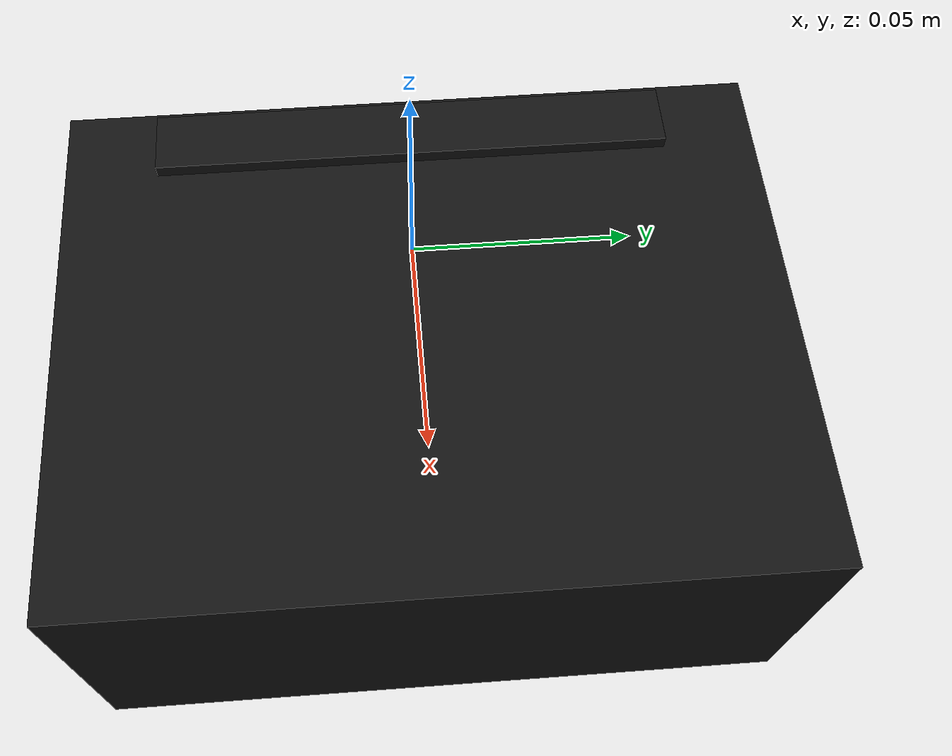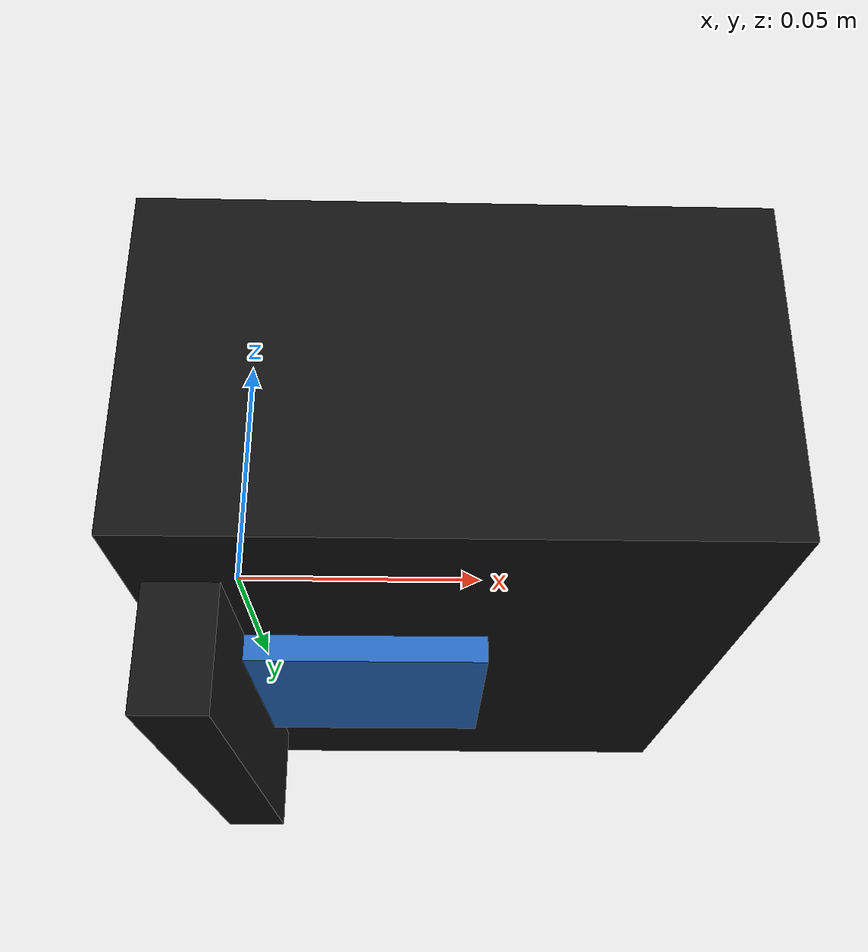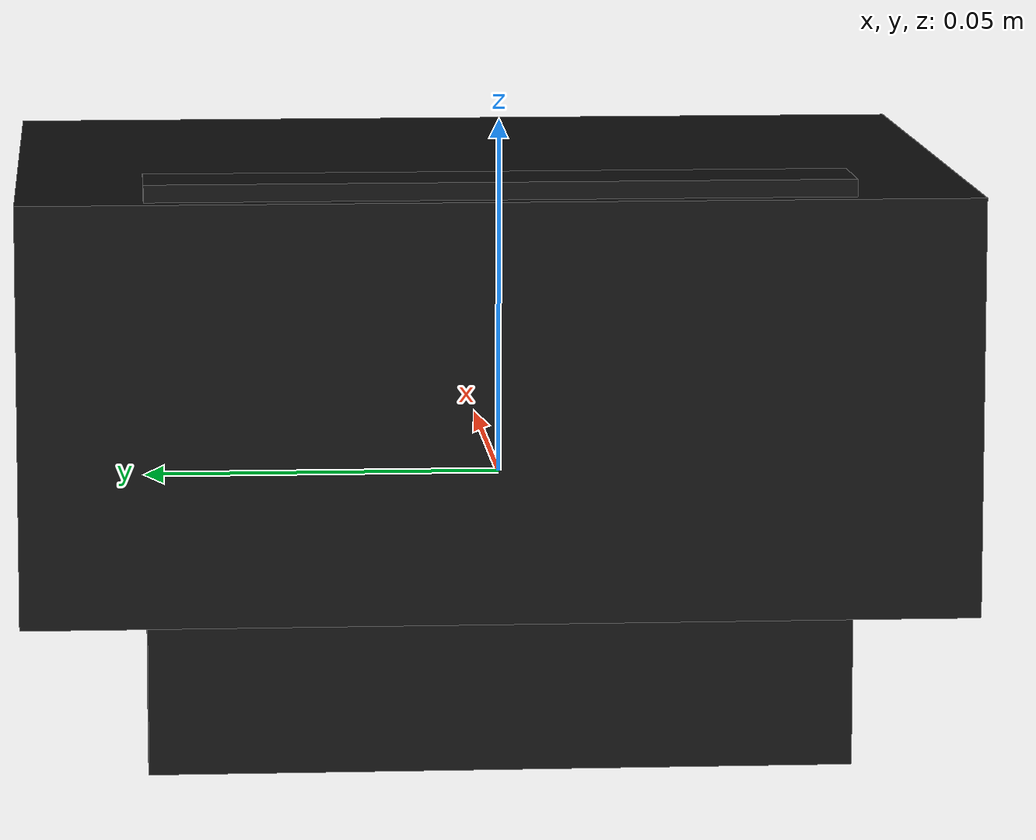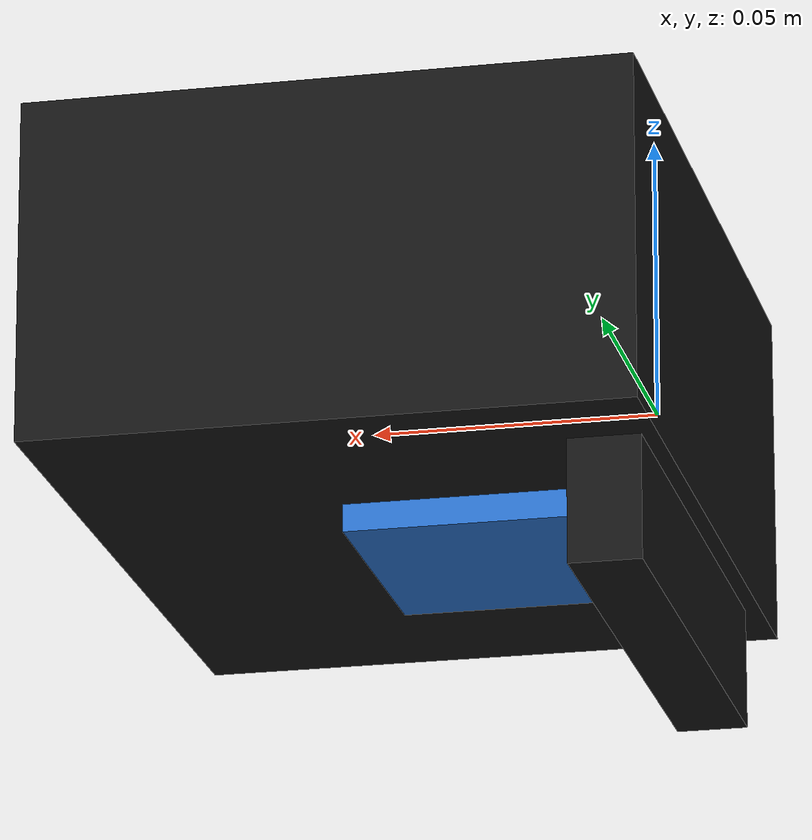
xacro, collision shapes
<?xml version="1.0"?>

<robot name="Sensor_Suite" xmlns:xacro="http://www.ros.org/wiki/xacro">

    <!-- Includes -->
    <xacro:include filename="$(find libra)/models/common/common.urdf.xacro"/>
    <xacro:include filename="$(find libra)/models/assemblies/sensor_suite.urdf.xacro"/>

    <!-- Model Construction -->
    <link name="base_link"/>
    <xacro:spawn_sensors parent="base_link"/>

</robot>

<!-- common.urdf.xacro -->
<robot xmlns:xacro="http://www.ros.org/wiki/xacro">

    <!-- Prevent duplicate inclusion -->
    <xacro:unless value="$(optenv COMMON_URDF_INCLUDED false)">
        <xacro:property name="COMMON_URDF_INCLUDED" value="true"/>

        <!-- ********************[ PROPERTIES ]******************** -->

        <xacro:property name="PI" value="3.14159265359"/>

        <!-- ********************[ MATERIALS ]******************** -->

        <!-- Colors: Monochrome -->
        <material name="black">
            <color rgba="${20/255} ${20/255} ${20/255} 1"/>
        </material>
        <material name="gray">
            <color rgba="${90/255} ${90/255} ${90/255} 1"/>
        </material>
        <material name="silver">
            <color rgba="${170/255} ${170/255} ${170/255} 1"/>
        </material>
        <material name="white">
            <color rgba="${250/255} ${250/255} ${250/255} 1"/>
        </material>

        <!-- Colors: Primary & Secondary -->
        <material name="red">
            <color rgba="${200/255} ${30/255} ${30/255} 1"/>
        </material>
        <material name="yellow">
            <color rgba="${225/255} ${200/255} ${40/255} 1"/>
        </material>
        <material name="blue">
            <color rgba="${40/255} ${110/255} ${200/255} 1"/>
        </material>

        <material name="orange">
            <color rgba="${220/255} ${110/255} ${40/255} 1"/>
        </material>
        <material name="green">
            <color rgba="${50/255} ${170/255} ${90/255} 1"/>
        </material>
        <material name="purple">
            <color rgba="${150/255} ${50/255} ${200/255} 1"/>
        </material>

        <!-- ********************[ MACROS ]******************** -->

        <xacro:macro name="box_inertia" params="m x y z">
            <inertial>
                <mass value="${m}"/>
                <inertia ixx="${(m/12) * (y*y + z*z)}" ixy="0.0" ixz="0.0"
                        iyy="${(m/12) * (x*x + z*z)}" iyz="0.0"
                        izz="${(m/12) * (x*x + y*y)}"/>
            </inertial>
        </xacro:macro>

        <xacro:macro name="cylinder_inertia" params="m r h">
            <inertial>
                <mass value="${m}"/>
                <inertia ixx="${(m/12) * (3*r*r + h*h)}" ixy = "0" ixz = "0"
                        iyy="${(m/12) * (3*r*r + h*h)}" iyz = "0"
                        izz="${(m/2) * (r*r)}"/>
            </inertial>
        </xacro:macro>

        <xacro:macro name="sphere_inertia" params="m r">
            <inertial>
                <mass value="${m}"/>
                <inertia ixx="${(2/5) * m * (r*r)}" ixy="0.0" ixz="0.0"
                        iyy="${(2/5) * m * (r*r)}" iyz="0.0"
                        izz="${(2/5) * m * (r*r)}"/>
            </inertial>
        </xacro:macro>

    </xacro:unless>
</robot>

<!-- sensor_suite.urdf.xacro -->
<robot xmlns:xacro="http://www.ros.org/wiki/xacro">

    <!-- Definition -->
    <xacro:macro name="spawn_sensors" params="parent">

        <!-- ********************[ PROPERTIES ]******************** -->

        <!-- Mounts -->
        <xacro:property name="m_lidar_L" value="0.012514"/>
        <xacro:property name="m_lidar_W" value="0.100000"/>
        <xacro:property name="m_lidar_H" value="0.084000"/>
        <xacro:property name="m_lidar_m" value="0.009"/>

        <xacro:property name="m_camera_L" value="0.104349"/>
        <xacro:property name="m_camera_W" value="0.135861"/>
        <xacro:property name="m_camera_H" value="0.059941"/>
        <xacro:property name="m_camera_m" value="0.056"/>

        <!-- 2D LIDAR (LightWare SF45-B) -->
        <xacro:property name="lidar_W" value="0.048462"/>
        <xacro:property name="lidar_H" value="0.043979"/>
        <xacro:property name="lidar_L" value="0.050587"/>
        <xacro:property name="lidar_m" value="0.058"/>

        <!-- RGB-D camera (Intel RealSense D456) -->
        <xacro:property name="camera_W" value="0.123999"/>
        <xacro:property name="camera_H" value="0.029093"/>
        <xacro:property name="camera_L" value="0.026004"/>
        <xacro:property name="camera_m" value="0.116"/>

        <!-- ********************[ LINKS ]******************** -->
        <!-- NOTE
            X = forward/red, Y = left/green, Z = upwards/blue
        -->

        <!-- Sensor Suite Base -->
        <link name="sensor_suite_base_link"/>
        <joint name="parent_to_sensor_suite_base" type="fixed">
            <parent link="${parent}"/>
            <child link="sensor_suite_base_link"/>
            <origin xyz="0 0 0" rpy="0 0 0"/>
        </joint>

        <!-- LIDAR Mount -->
        <link name="mount_lidar_link">
            <visual>
                <origin xyz="0 0 0" rpy="${PI/2} 0 ${PI/2}"/>
                <geometry>
                    <mesh filename="package://libra/meshes/mount_g-lidar.stl" scale="0.001 0.001 0.001"/>
                </geometry>
                <material name="black"/>
            </visual>
            <collision>
                <origin xyz="0 0 0" rpy="0 0 0"/>
                <geometry>
                    <box size="${m_lidar_L} ${m_lidar_W} ${m_lidar_H}"/>
                </geometry>
            </collision>
            <xacro:box_inertia m="${m_lidar_m}" x="${m_lidar_L}" y="${m_lidar_W}" z="${m_lidar_H}"/>
        </link>
        <joint name="base_to_mount_lidar" type="fixed">
            <parent link="sensor_suite_base_link"/>
            <child link="mount_lidar_link"/>
            <origin xyz="0 0 0" rpy="0 0 0"/>
        </joint>

        <!-- LIDAR -->
        <link name="lidar_link">
            <visual>
                <origin xyz="0.013602 0 0.028351" rpy="0 0 -${PI/2}"/>
                <geometry>
                    <mesh filename="package://libra/meshes/lidar_sf45b-simplified.stl" scale="0.001 0.001 0.001"/>
                </geometry>
                <material name="blue"/>
            </visual>
            <collision>
                <origin xyz="0 0 ${lidar_H/2}" rpy="0 0 0"/>
                <geometry>
                    <box size="${lidar_L} ${lidar_W} ${lidar_H}"/>
                </geometry>
            </collision>
            <xacro:box_inertia m="${lidar_m}" x="${lidar_L}" y="${lidar_W}" z="${lidar_H}"/>
        </link>
        <joint name="mount_lidar_to_lidar" type="fixed">
            <parent link="mount_lidar_link"/>
            <child link="lidar_link"/>
            <origin xyz="0.006 0 0" rpy="0 ${PI/2} 0"/>  <!-- facing downwards -->
        </joint>

        <!-- Camera Mount -->
        <link name="mount_camera_link">
            <visual>
                <origin xyz="0 0 0" rpy="-${PI/2} 0 ${PI/2}"/>
                <geometry>
                    <mesh filename="package://libra/meshes/mount_g-realsense.stl" scale="0.001 0.001 0.001"/>
                </geometry>
                <material name="black"/>
            </visual>
            <collision>
                <origin xyz="0.045175 0 0.009540" rpy="0 0 0"/>
                <geometry>
                    <box size="${m_camera_L} ${m_camera_W} ${m_camera_H}"/>
                </geometry>
            </collision>
            <xacro:box_inertia m="${m_camera_m}" x="${m_camera_L}" y="${m_camera_W}" z="${m_camera_H}"/>
        </link>
        <joint name="base_to_mount_camera" type="fixed">
            <parent link="sensor_suite_base_link"/>
            <child link="mount_camera_link"/>
            <origin xyz="-0.002 0 0" rpy="0 0 0"/>  <!-- accounts for mounting bracket thickness -->
        </joint>

        <!-- Camera -->
        <link name="camera_link">
            <visual>
                <origin xyz="0.026 0 0" rpy="${PI/2} 0 ${PI/2}"/>
                <geometry>
                    <mesh filename="package://libra/meshes/realsense_d456.stl" scale="0.001 0.001 0.001"/>
                </geometry>
                <material name="blue"/>
            </visual>
            <collision>
                <origin xyz="${camera_L/2} 0 0" rpy="0 0 0"/>
                <geometry>
                    <box size="${camera_L} ${camera_W} ${camera_H}"/>
                </geometry>
            </collision>
            <xacro:box_inertia m="${camera_m}" x="${camera_L}" y="${camera_W}" z="${camera_H}"/>
        </link>
        <joint name="mount_camera_to_camera" type="fixed">
            <parent link="mount_camera_link"/>
            <child link="camera_link"/>
            <origin xyz="0.068267 0 0" rpy="${PI} 0 0"/>  <!-- upside-down -->
        </joint>

        <!-- ********************[ GAZEBO CONFIG ]******************** -->

        <gazebo reference="mount_lidar_link"><material>Gazebo/Black</material></gazebo>
        <gazebo reference="lidar_link"><material>Gazebo/Blue</material></gazebo>
        <gazebo reference="mount_camera_link"><material>Gazebo/Black</material></gazebo>
        <gazebo reference="camera_link"><material>Gazebo/Blue</material></gazebo>

    </xacro:macro>
</robot>
